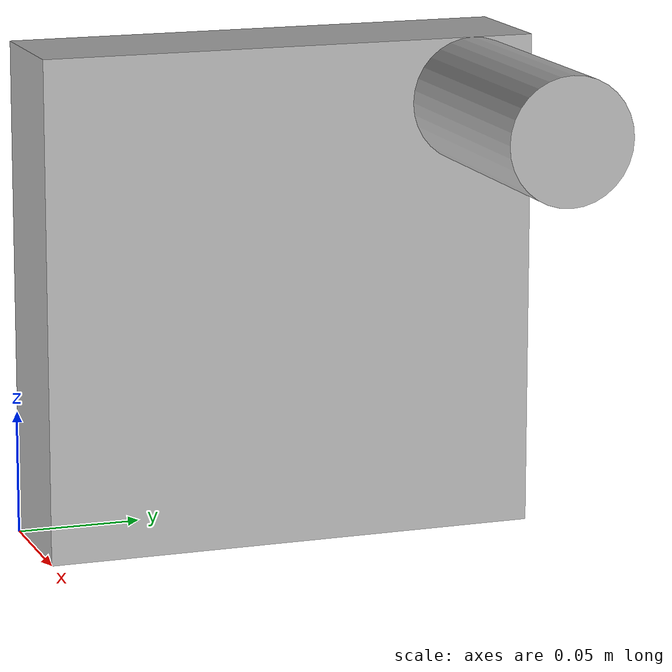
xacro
<?xml version="1.0" ?>
<robot name="test2" xmlns:xacro="http://www.ros.org/wiki/xacro">

<xacro:include filename="$(find test2_description)/urdf/materials.xacro" />
<xacro:include filename="$(find test2_description)/urdf/test2.trans" />
<xacro:include filename="$(find test2_description)/urdf/test2.gazebo" />
<link name="base_link">
  <inertial>
    <origin rpy="0 0 0" xyz="0.03170485971827931 0.1067048597182795 0.10670485971827923"/>
    <mass value="17.24134389566749"/>
    <inertia ixx="0.120938" ixy="-0.007895" ixz="-0.007895" iyy="0.072919" iyz="-0.007895" izz="0.072919"/>
  </inertial>
  <visual>
    <origin rpy="0 0 0" xyz="0 0 0"/>
    <geometry>
      <mesh filename="package://test2_description/meshes/base_link.stl" scale="0.001 0.001 0.001"/>
    </geometry>
    <material name="silver"/>
  </visual>
  <collision>
    <origin rpy="0 0 0" xyz="0 0 0"/>
    <geometry>
      <mesh filename="package://test2_description/meshes/base_link.stl" scale="0.001 0.001 0.001"/>
    </geometry>
  </collision>
</link>

</robot>

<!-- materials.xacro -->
<robot name="test2" xmlns:xacro="http://www.ros.org/wiki/xacro" >

<material name="silver">
  <color rgba="0.700 0.700 0.700 1.000"/>
</material>

</robot>

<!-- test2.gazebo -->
<robot name="test2" xmlns:xacro="http://www.ros.org/wiki/xacro" >

<xacro:property name="body_color" value="Gazebo/Silver" />

<gazebo>
  <plugin filename="libgazebo_ros_control.so" name="control"/>
</gazebo>
<gazebo reference="base_link">
  <material>${body_color}</material>
  <mu1>0.2</mu1>
  <mu2>0.2</mu2>
  <selfCollide>true</selfCollide>
  <gravity>true</gravity>
</gazebo>

</robot>
